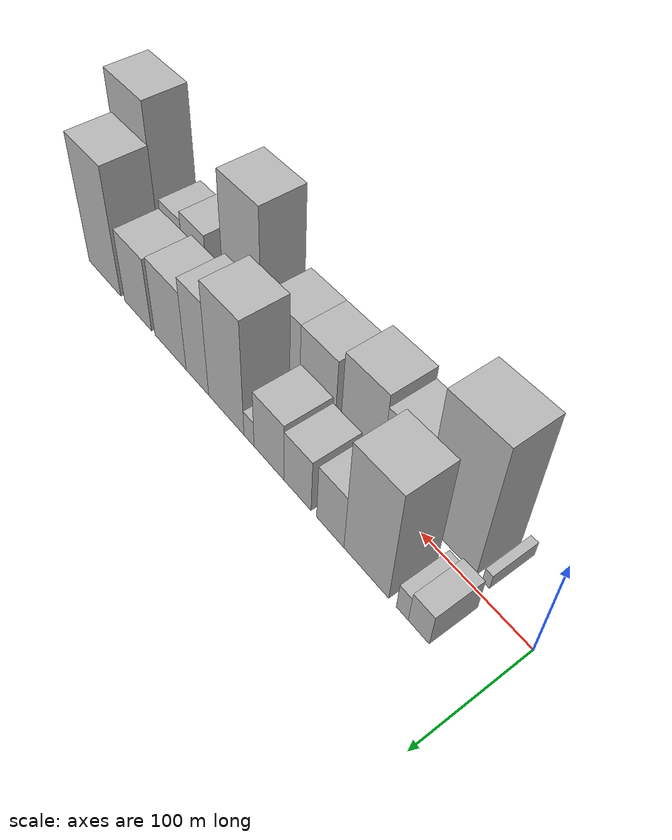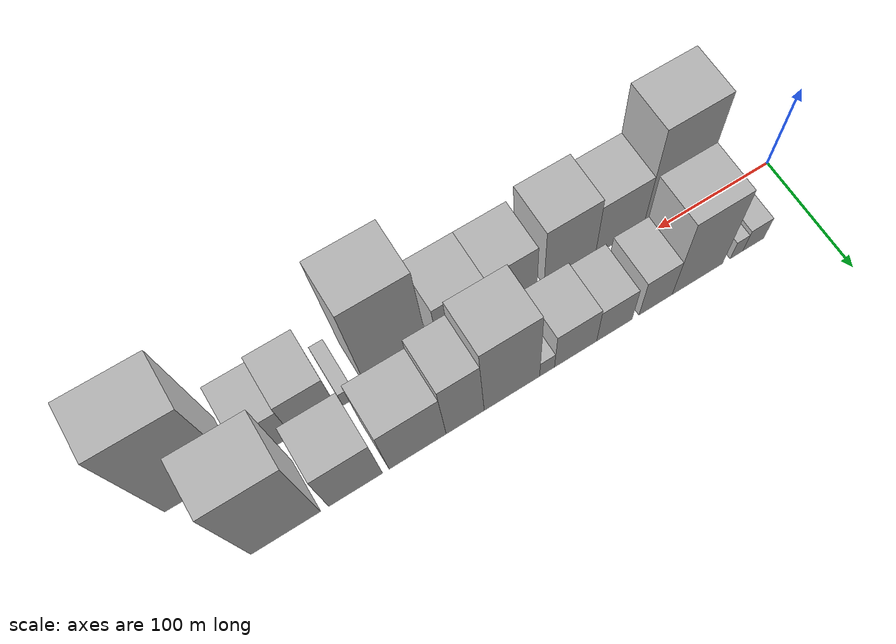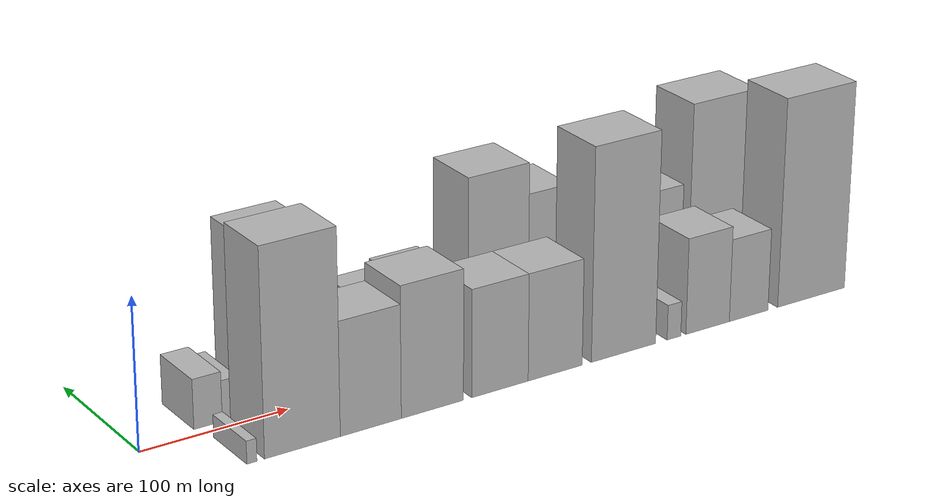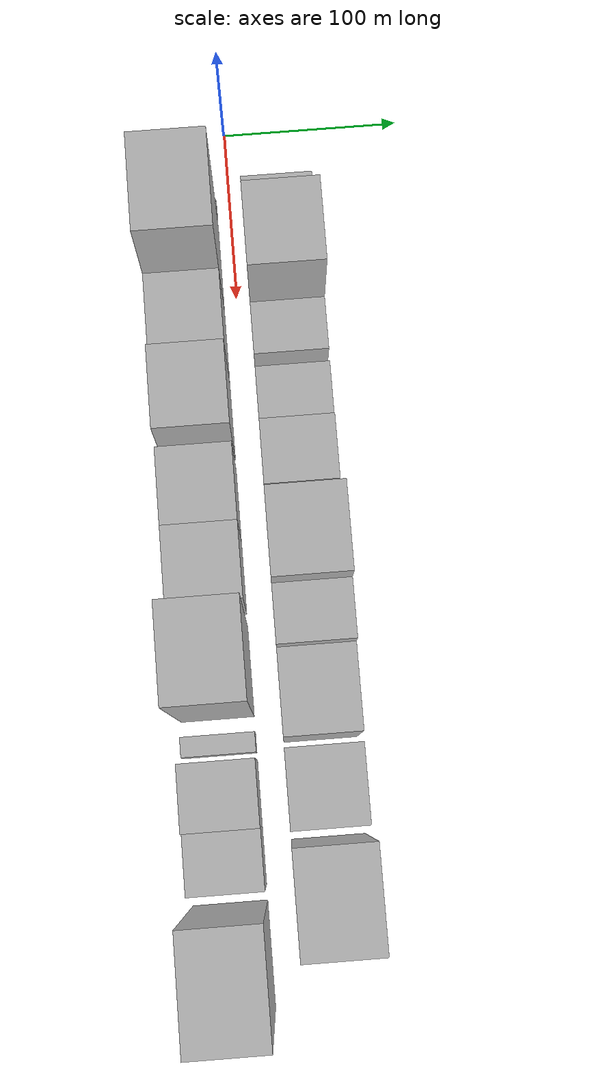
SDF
<sdf version="1.6">
 <world name="default">
  <scene>
   <sky><clouds><speed>12</speed></clouds></sky>
   <ambient>0.4 0.4 0.4 1</ambient>
   <background>0.7 0.7 0.7 1</background>
   <shadows>1</shadows>
  </scene>
  <gravity>0 0 -9.8066</gravity>
  <magnetic_field>6e-06 2.3e-05 -4.2e-05</magnetic_field>
  <physics default="0" name="default_physics" type="ode">
   <ode>
    <solver>
     <type>quick</type>
     <iters>10</iters>
     <sor>1.0</sor>
     <use_dynamic_moi_rescaling>0</use_dynamic_moi_rescaling>
    </solver>
    <constraints>
     <cfm>0</cfm>
     <erp>0.2</erp>
     <contact_max_correcting_vel>100</contact_max_correcting_vel>
     <contact_surface_layer>0.001</contact_surface_layer>
    </constraints>
   </ode>
   <max_step_size>0.004</max_step_size>
   <real_time_factor>1</real_time_factor>
   <real_time_update_rate>250</real_time_update_rate>
  </physics>
  <light name="sun" type="directional">
   <pose>0 0 10 0 0 0</pose>
   <diffuse>0.8 0.8 0.8 1</diffuse>
   <specular>0.2 0.2 0.2 1</specular>
   <attenuation>
    <range>1000</range>
    <constant>0.9</constant>
    <linear>0.01</linear>
    <quadratic>0.001</quadratic>
   </attenuation>
   <direction>-0.5 0.1 -0.9</direction>
  </light>
  <model name="building_1">
   <static>1</static>
   <pose>49.5607 27.5000 0 0.000000 0.000000 1.570796</pose>
   <link name="link">
    <pose>0 0 16.50 0 0 0</pose>
    <collision name="collision"><geometry><box><size>40.0000 19.1213 33.0000</size></box></geometry></collision>
    <visual name="visual">
     <cast_shadows>0</cast_shadows>
     <geometry><box><size>40.0000 19.1213 33.0000</size></box></geometry>
     <material>
      <script>
       <uri>model://HANNAS_wall/materials/scripts</uri>
       <uri>model://HANNAS_wall/materials/textures</uri>
       <name>vrc/HANNAS_wall</name>
      </script>
     </material>
    </visual>
   </link>
  </model>
  <model name="building_2">
   <static>1</static>
   <pose>64.6981 27.5000 0 0.000000 0.000000 1.570796</pose>
   <link name="link">
    <pose>0 0 13.50 0 0 0</pose>
    <collision name="collision"><geometry><box><size>40.0000 11.1535 27.0000</size></box></geometry></collision>
    <visual name="visual">
     <cast_shadows>0</cast_shadows>
     <geometry><box><size>40.0000 11.1535 27.0000</size></box></geometry>
     <material>
      <script>
       <uri>model://HANNAS_wall/materials/scripts</uri>
       <uri>model://HANNAS_wall/materials/textures</uri>
       <name>vrc/HANNAS_wall</name>
      </script>
     </material>
    </visual>
   </link>
  </model>
  <model name="building_3">
   <static>1</static>
   <pose>99.5088 27.5000 0 0.000000 0.000000 1.570796</pose>
   <link name="link">
    <pose>0 0 57.00 0 0 0</pose>
    <collision name="collision"><geometry><box><size>40.0000 44.4681 114.0000</size></box></geometry></collision>
    <visual name="visual">
     <cast_shadows>0</cast_shadows>
     <geometry><box><size>40.0000 44.4681 114.0000</size></box></geometry>
     <material>
      <script>
       <uri>model://HANNAS_wall/materials/scripts</uri>
       <uri>model://HANNAS_wall/materials/textures</uri>
       <name>vrc/HANNAS_wall</name>
      </script>
     </material>
    </visual>
   </link>
  </model>
  <model name="building_4">
   <static>1</static>
   <pose>136.1233 27.5000 0 0.000000 0.000000 1.570796</pose>
   <link name="link">
    <pose>0 0 28.50 0 0 0</pose>
    <collision name="collision"><geometry><box><size>40.0000 28.7609 57.0000</size></box></geometry></collision>
    <visual name="visual">
     <cast_shadows>0</cast_shadows>
     <geometry><box><size>40.0000 28.7609 57.0000</size></box></geometry>
     <material>
      <script>
       <uri>model://HANNAS_wall/materials/scripts</uri>
       <uri>model://HANNAS_wall/materials/textures</uri>
       <name>vrc/HANNAS_wall</name>
      </script>
     </material>
    </visual>
   </link>
  </model>
  <model name="building_5">
   <static>1</static>
   <pose>171.5730 27.5000 0 0.000000 0.000000 1.570796</pose>
   <link name="link">
    <pose>0 0 27.00 0 0 0</pose>
    <collision name="collision"><geometry><box><size>40.0000 30.1384 54.0000</size></box></geometry></collision>
    <visual name="visual">
     <cast_shadows>0</cast_shadows>
     <geometry><box><size>40.0000 30.1384 54.0000</size></box></geometry>
     <material>
      <script>
       <uri>model://HANNAS_wall/materials/scripts</uri>
       <uri>model://HANNAS_wall/materials/textures</uri>
       <name>vrc/HANNAS_wall</name>
      </script>
     </material>
    </visual>
   </link>
  </model>
  <model name="building_6">
   <static>1</static>
   <pose>204.2278 27.5000 0 0.000000 0.000000 1.570796</pose>
   <link name="link">
    <pose>0 0 30.00 0 0 0</pose>
    <collision name="collision"><geometry><box><size>40.0000 35.1713 60.0000</size></box></geometry></collision>
    <visual name="visual">
     <cast_shadows>0</cast_shadows>
     <geometry><box><size>40.0000 35.1713 60.0000</size></box></geometry>
     <material>
      <script>
       <uri>model://HANNAS_wall/materials/scripts</uri>
       <uri>model://HANNAS_wall/materials/textures</uri>
       <name>vrc/HANNAS_wall</name>
      </script>
     </material>
    </visual>
   </link>
  </model>
  <model name="building_7">
   <static>1</static>
   <pose>227.9270 27.5000 0 0.000000 0.000000 1.570796</pose>
   <link name="link">
    <pose>0 0 13.50 0 0 0</pose>
    <collision name="collision"><geometry><box><size>40.0000 12.2270 27.0000</size></box></geometry></collision>
    <visual name="visual">
     <cast_shadows>0</cast_shadows>
     <geometry><box><size>40.0000 12.2270 27.0000</size></box></geometry>
     <material>
      <script>
       <uri>model://HANNAS_wall/materials/scripts</uri>
       <uri>model://HANNAS_wall/materials/textures</uri>
       <name>vrc/HANNAS_wall</name>
      </script>
     </material>
    </visual>
   </link>
  </model>
  <model name="building_8">
   <static>1</static>
   <pose>256.5450 27.5000 0 0.000000 0.000000 1.570796</pose>
   <link name="link">
    <pose>0 0 58.50 0 0 0</pose>
    <collision name="collision"><geometry><box><size>40.0000 45.0088 117.0000</size></box></geometry></collision>
    <visual name="visual">
     <cast_shadows>0</cast_shadows>
     <geometry><box><size>40.0000 45.0088 117.0000</size></box></geometry>
     <material>
      <script>
       <uri>model://HANNAS_wall/materials/scripts</uri>
       <uri>model://HANNAS_wall/materials/textures</uri>
       <name>vrc/HANNAS_wall</name>
      </script>
     </material>
    </visual>
   </link>
  </model>
  <model name="building_9">
   <static>1</static>
   <pose>294.1716 27.5000 0 0.000000 0.000000 1.570796</pose>
   <link name="link">
    <pose>0 0 48.00 0 0 0</pose>
    <collision name="collision"><geometry><box><size>40.0000 30.2445 96.0000</size></box></geometry></collision>
    <visual name="visual">
     <cast_shadows>0</cast_shadows>
     <geometry><box><size>40.0000 30.2445 96.0000</size></box></geometry>
     <material>
      <script>
       <uri>model://HANNAS_wall/materials/scripts</uri>
       <uri>model://HANNAS_wall/materials/textures</uri>
       <name>vrc/HANNAS_wall</name>
      </script>
     </material>
    </visual>
   </link>
  </model>
  <model name="building_10">
   <static>1</static>
   <pose>331.5309 27.5000 0 0.000000 0.000000 1.570796</pose>
   <link name="link">
    <pose>0 0 40.50 0 0 0</pose>
    <collision name="collision"><geometry><box><size>40.0000 44.4741 81.0000</size></box></geometry></collision>
    <visual name="visual">
     <cast_shadows>0</cast_shadows>
     <geometry><box><size>40.0000 44.4741 81.0000</size></box></geometry>
     <material>
      <script>
       <uri>model://HANNAS_wall/materials/scripts</uri>
       <uri>model://HANNAS_wall/materials/textures</uri>
       <name>vrc/HANNAS_wall</name>
      </script>
     </material>
    </visual>
   </link>
  </model>
  <model name="building_11">
   <static>1</static>
   <pose>379.2268 27.5000 0 0.000000 0.000000 1.570796</pose>
   <link name="link">
    <pose>0 0 37.50 0 0 0</pose>
    <collision name="collision"><geometry><box><size>40.0000 40.9176 75.0000</size></box></geometry></collision>
    <visual name="visual">
     <cast_shadows>0</cast_shadows>
     <geometry><box><size>40.0000 40.9176 75.0000</size></box></geometry>
     <material>
      <script>
       <uri>model://HANNAS_wall/materials/scripts</uri>
       <uri>model://HANNAS_wall/materials/textures</uri>
       <name>vrc/HANNAS_wall</name>
      </script>
     </material>
    </visual>
   </link>
  </model>
  <model name="building_12">
   <static>1</static>
   <pose>431.3917 27.5000 0 0.000000 0.000000 1.570796</pose>
   <link name="link">
    <pose>0 0 64.50 0 0 0</pose>
    <collision name="collision"><geometry><box><size>40.0000 51.4122 129.0000</size></box></geometry></collision>
    <visual name="visual">
     <cast_shadows>0</cast_shadows>
     <geometry><box><size>40.0000 51.4122 129.0000</size></box></geometry>
     <material>
      <script>
       <uri>model://HANNAS_wall/materials/scripts</uri>
       <uri>model://HANNAS_wall/materials/textures</uri>
       <name>vrc/HANNAS_wall</name>
      </script>
     </material>
    </visual>
   </link>
  </model>
  <model name="building_13">
   <static>1</static>
   <pose>48.3441 -27.5000 0 0.000000 0.000000 1.570796</pose>
   <link name="link">
    <pose>0 0 7.50 0 0 0</pose>
    <collision name="collision"><geometry><box><size>40.0000 6.6882 15.0000</size></box></geometry></collision>
    <visual name="visual">
     <cast_shadows>0</cast_shadows>
     <geometry><box><size>40.0000 6.6882 15.0000</size></box></geometry>
     <material>
      <script>
       <uri>model://HANNAS_wall/materials/scripts</uri>
       <uri>model://HANNAS_wall/materials/textures</uri>
       <name>vrc/HANNAS_wall</name>
      </script>
     </material>
    </visual>
   </link>
  </model>
  <model name="building_14">
   <static>1</static>
   <pose>82.2891 -27.5000 0 0.000000 0.000000 1.570796</pose>
   <link name="link">
    <pose>0 0 67.50 0 0 0</pose>
    <collision name="collision"><geometry><box><size>40.0000 51.2019 135.0000</size></box></geometry></collision>
    <visual name="visual">
     <cast_shadows>0</cast_shadows>
     <geometry><box><size>40.0000 51.2019 135.0000</size></box></geometry>
     <material>
      <script>
       <uri>model://HANNAS_wall/materials/scripts</uri>
       <uri>model://HANNAS_wall/materials/textures</uri>
       <name>vrc/HANNAS_wall</name>
      </script>
     </material>
    </visual>
   </link>
  </model>
  <model name="building_15">
   <static>1</static>
   <pose>129.0529 -27.5000 0 0.000000 0.000000 1.570796</pose>
   <link name="link">
    <pose>0 0 37.50 0 0 0</pose>
    <collision name="collision"><geometry><box><size>40.0000 42.3256 75.0000</size></box></geometry></collision>
    <visual name="visual">
     <cast_shadows>0</cast_shadows>
     <geometry><box><size>40.0000 42.3256 75.0000</size></box></geometry>
     <material>
      <script>
       <uri>model://HANNAS_wall/materials/scripts</uri>
       <uri>model://HANNAS_wall/materials/textures</uri>
       <name>vrc/HANNAS_wall</name>
      </script>
     </material>
    </visual>
   </link>
  </model>
  <model name="building_16">
   <static>1</static>
   <pose>172.3484 -27.5000 0 0.000000 0.000000 1.570796</pose>
   <link name="link">
    <pose>0 0 43.50 0 0 0</pose>
    <collision name="collision"><geometry><box><size>40.0000 44.2655 87.0000</size></box></geometry></collision>
    <visual name="visual">
     <cast_shadows>0</cast_shadows>
     <geometry><box><size>40.0000 44.2655 87.0000</size></box></geometry>
     <material>
      <script>
       <uri>model://HANNAS_wall/materials/scripts</uri>
       <uri>model://HANNAS_wall/materials/textures</uri>
       <name>vrc/HANNAS_wall</name>
      </script>
     </material>
    </visual>
   </link>
  </model>
  <model name="building_17">
   <static>1</static>
   <pose>221.0732 -27.5000 0 0.000000 0.000000 1.570796</pose>
   <link name="link">
    <pose>0 0 36.00 0 0 0</pose>
    <collision name="collision"><geometry><box><size>40.0000 41.1842 72.0000</size></box></geometry></collision>
    <visual name="visual">
     <cast_shadows>0</cast_shadows>
     <geometry><box><size>40.0000 41.1842 72.0000</size></box></geometry>
     <material>
      <script>
       <uri>model://HANNAS_wall/materials/scripts</uri>
       <uri>model://HANNAS_wall/materials/textures</uri>
       <name>vrc/HANNAS_wall</name>
      </script>
     </material>
    </visual>
   </link>
  </model>
  <model name="building_18">
   <static>1</static>
   <pose>261.8798 -27.5000 0 0.000000 0.000000 1.570796</pose>
   <link name="link">
    <pose>0 0 36.00 0 0 0</pose>
    <collision name="collision"><geometry><box><size>40.0000 40.4288 72.0000</size></box></geometry></collision>
    <visual name="visual">
     <cast_shadows>0</cast_shadows>
     <geometry><box><size>40.0000 40.4288 72.0000</size></box></geometry>
     <material>
      <script>
       <uri>model://HANNAS_wall/materials/scripts</uri>
       <uri>model://HANNAS_wall/materials/textures</uri>
       <name>vrc/HANNAS_wall</name>
      </script>
     </material>
    </visual>
   </link>
  </model>
  <model name="building_19">
   <static>1</static>
   <pose>313.8460 -27.5000 0 0.000000 0.000000 1.570796</pose>
   <link name="link">
    <pose>0 0 72.00 0 0 0</pose>
    <collision name="collision"><geometry><box><size>40.0000 49.5036 144.0000</size></box></geometry></collision>
    <visual name="visual">
     <cast_shadows>0</cast_shadows>
     <geometry><box><size>40.0000 49.5036 144.0000</size></box></geometry>
     <material>
      <script>
       <uri>model://HANNAS_wall/materials/scripts</uri>
       <uri>model://HANNAS_wall/materials/textures</uri>
       <name>vrc/HANNAS_wall</name>
      </script>
     </material>
    </visual>
   </link>
  </model>
  <model name="building_20">
   <static>1</static>
   <pose>352.9957 -27.5000 0 0.000000 0.000000 1.570796</pose>
   <link name="link">
    <pose>0 0 12.00 0 0 0</pose>
    <collision name="collision"><geometry><box><size>40.0000 10.7958 24.0000</size></box></geometry></collision>
    <visual name="visual">
     <cast_shadows>0</cast_shadows>
     <geometry><box><size>40.0000 10.7958 24.0000</size></box></geometry>
     <material>
      <script>
       <uri>model://HANNAS_wall/materials/scripts</uri>
       <uri>model://HANNAS_wall/materials/textures</uri>
       <name>vrc/HANNAS_wall</name>
      </script>
     </material>
    </visual>
   </link>
  </model>
  <model name="building_21">
   <static>1</static>
   <pose>379.7557 -27.5000 0 0.000000 0.000000 1.570796</pose>
   <link name="link">
    <pose>0 0 33.00 0 0 0</pose>
    <collision name="collision"><geometry><box><size>40.0000 34.7243 66.0000</size></box></geometry></collision>
    <visual name="visual">
     <cast_shadows>0</cast_shadows>
     <geometry><box><size>40.0000 34.7243 66.0000</size></box></geometry>
     <material>
      <script>
       <uri>model://HANNAS_wall/materials/scripts</uri>
       <uri>model://HANNAS_wall/materials/textures</uri>
       <name>vrc/HANNAS_wall</name>
      </script>
     </material>
    </visual>
   </link>
  </model>
  <model name="building_22">
   <static>1</static>
   <pose>412.8083 -27.5000 0 0.000000 0.000000 1.570796</pose>
   <link name="link">
    <pose>0 0 28.50 0 0 0</pose>
    <collision name="collision"><geometry><box><size>40.0000 31.3809 57.0000</size></box></geometry></collision>
    <visual name="visual">
     <cast_shadows>0</cast_shadows>
     <geometry><box><size>40.0000 31.3809 57.0000</size></box></geometry>
     <material>
      <script>
       <uri>model://HANNAS_wall/materials/scripts</uri>
       <uri>model://HANNAS_wall/materials/textures</uri>
       <name>vrc/HANNAS_wall</name>
      </script>
     </material>
    </visual>
   </link>
  </model>
  <model name="building_23">
   <static>1</static>
   <pose>464.3433 -27.5000 0 0.000000 0.000000 1.570796</pose>
   <link name="link">
    <pose>0 0 72.00 0 0 0</pose>
    <collision name="collision"><geometry><box><size>40.0000 55.6891 144.0000</size></box></geometry></collision>
    <visual name="visual">
     <cast_shadows>0</cast_shadows>
     <geometry><box><size>40.0000 55.6891 144.0000</size></box></geometry>
     <material>
      <script>
       <uri>model://HANNAS_wall/materials/scripts</uri>
       <uri>model://HANNAS_wall/materials/textures</uri>
       <name>vrc/HANNAS_wall</name>
      </script>
     </material>
    </visual>
   </link>
  </model>
 </world>
</sdf>
